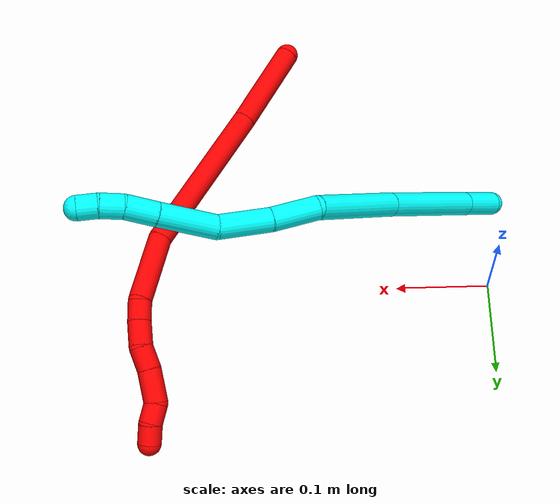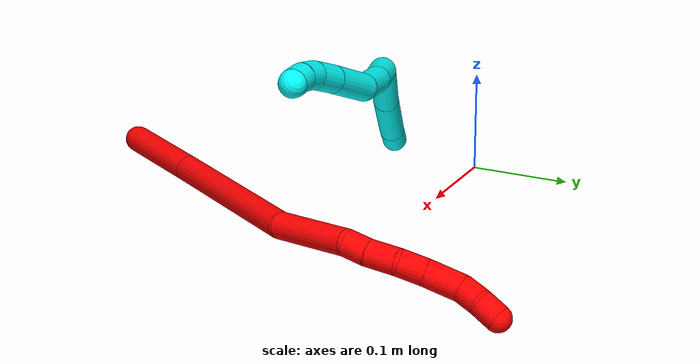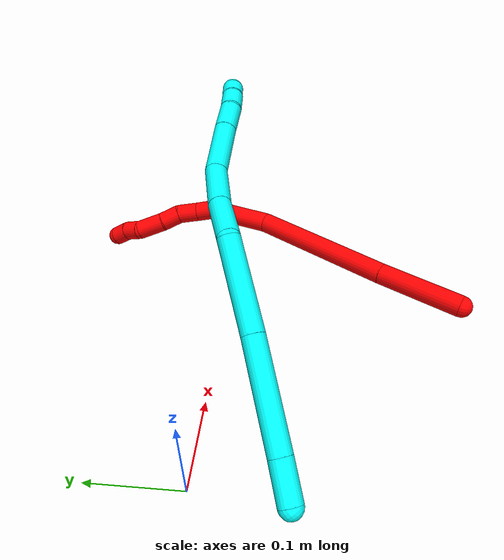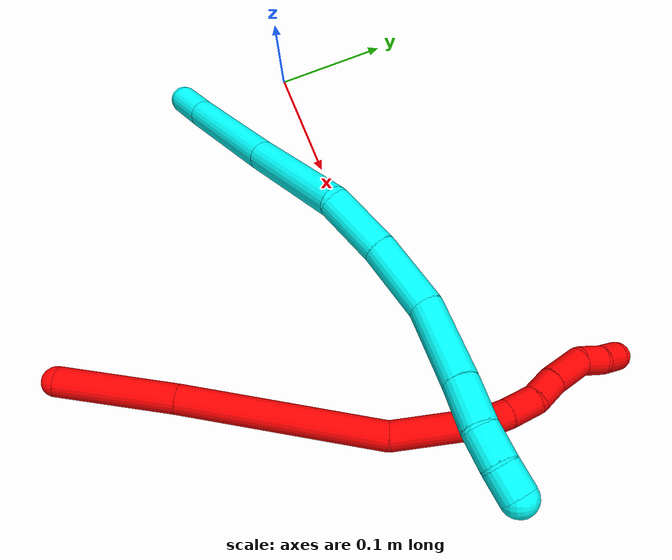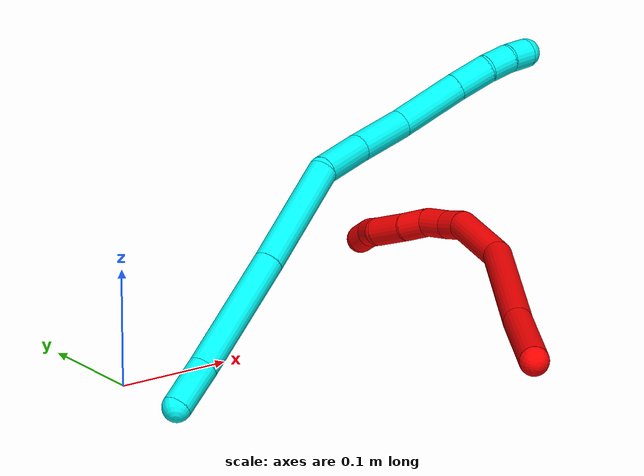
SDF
<sdf version="1.7">
 <world name="default">
  <model name="photoneo_s_sensor">
   <static>1</static>
   <pose>0 0 2 1.57079 1.57079 3.14159</pose>
   <link name="link">
    <inertial><mass>0.1</mass></inertial>
    <sensor name="sensor" type="depth">
     <update_rate>30</update_rate>
     <camera>
      <horizontal_fov>1.22</horizontal_fov>
      <image><width>1920</width><height>1200</height><format>B8G8R8</format></image>
      <clip><near>0.1</near><far>4</far></clip>
      <depth_camera><output>points</output></depth_camera>
     </camera>
     <plugin name="camera_plugin" filename="libgazebo_ros_depth_camera.so">
      <baseline>0.2</baseline>
      <alwaysOn>1</alwaysOn>
      <updateRate>0.0</updateRate>
      <cameraName>camera_ir</cameraName>
      <imageTopicName>/camera/color/image_raw</imageTopicName>
      <cameraInfoTopicName>/camera/color/camera_info</cameraInfoTopicName>
      <depthImageTopicName>/camera/depth/image_raw</depthImageTopicName>
      <depthImageCameraInfoTopicName>/camera/depth/camera_info</depthImageCameraInfoTopicName>
      <pointCloudTopicName>/camera/depth/points</pointCloudTopicName>
      <frameName>fr_optical</frameName>
      <pointCloudCutoff>0.1</pointCloudCutoff>
      <pointCloudCutoffMax>2.0</pointCloudCutoffMax>
      <distortionK1>0</distortionK1>
      <distortionK2>0</distortionK2>
      <distortionK3>0</distortionK3>
      <distortionT1>0</distortionT1>
      <distortionT2>0</distortionT2>
      <CxPrime>0</CxPrime>
      <Cx>0</Cx>
      <Cy>0</Cy>
      <focalLength>0</focalLength>
      <hackBaseline>0</hackBaseline>
     </plugin>
    </sensor>
   </link>
  </model>
  <model name="bin">
   <static>1</static>
   <link name="bottom">
    <collision name="collision-bottom">
     <pose>0 0 -0.01 0 -0 0</pose>
     <geometry><box><size>0.8 0.6 0.02</size></box></geometry>
     <surface>
      <friction><ode><mu>100</mu><mu2>100</mu2></ode></friction>
      <contact><collide_bitmask>65535</collide_bitmask></contact>
     </surface>
    </collision>
   </link>
   <link name="west_wall">
    <collision name="collision-west_wall">
     <pose>-0.41 0 0.1 0 -0 0</pose>
     <geometry><box><size>0.02 0.6 0.2</size></box></geometry>
     <surface>
      <friction><ode><mu>100</mu><mu2>100</mu2></ode></friction>
      <contact><collide_bitmask>65535</collide_bitmask></contact>
     </surface>
    </collision>
   </link>
   <link name="east_wall">
    <collision name="collision-east_wall">
     <pose>0.41 0 0.1 0 -0 0</pose>
     <geometry><box><size>0.02 0.6 0.2</size></box></geometry>
     <surface>
      <friction><ode><mu>100</mu><mu2>100</mu2></ode></friction>
      <contact><collide_bitmask>65535</collide_bitmask></contact>
     </surface>
    </collision>
   </link>
   <link name="south_wall">
    <collision name="collision-south_wall">
     <pose>0 -0.31 0.1 0 -0 0</pose>
     <geometry><box><size>0.8 0.02 0.2</size></box></geometry>
     <surface>
      <friction><ode><mu>100</mu><mu2>100</mu2></ode></friction>
      <contact><collide_bitmask>65535</collide_bitmask></contact>
     </surface>
    </collision>
   </link>
   <link name="north_wall">
    <collision name="collision-north_wall">
     <pose>0 0.31 0.1 0 -0 0</pose>
     <geometry><box><size>0.8 0.02 0.2</size></box></geometry>
     <surface>
      <friction><ode><mu>100</mu><mu2>100</mu2></ode></friction>
      <contact><collide_bitmask>65535</collide_bitmask></contact>
     </surface>
    </collision>
   </link>
  </model>
  <model name="2">
   <static>0</static>
   <link name="2">
    <collision name="collision-cylinder-e_1_1_4">
     <pose>0.010281 0.004033 0.048263 -0.083367 0.209177 -0.008756</pose>
     <geometry><cylinder><radius>0.0125</radius><length>0.09902</length></cylinder></geometry>
     <surface>
      <friction><ode><mu>1.16</mu><mu2>1.16</mu2><slip1>0</slip1><slip2>0</slip2></ode></friction>
      <contact><ode><kp>1e+06</kp><kd>1</kd><max_vel>0</max_vel><min_depth>0.001</min_depth></ode></contact>
     </surface>
    </collision>
    <visual name="visual-cylinder-e_1_1_4">
     <pose>0.010281 0.004033 0.048263 -0.083367 0.209177 -0.008756</pose>
     <geometry><cylinder><radius>0.0125</radius><length>0.09902</length></cylinder></geometry>
     <material><ambient>1 0 0 1</ambient></material>
    </visual>
    <collision name="collision-cylinder-e_2_4_5">
     <pose>0.041038 0.014027 0.180428 -0.070936 0.238789 -0.008513</pose>
     <geometry><cylinder><radius>0.0125</radius><length>0.173142</length></cylinder></geometry>
     <surface>
      <friction><ode><mu>1.16</mu><mu2>1.16</mu2><slip1>0</slip1><slip2>0</slip2></ode></friction>
      <contact><ode><kp>1e+06</kp><kd>1</kd><max_vel>0</max_vel><min_depth>0.001</min_depth></ode></contact>
     </surface>
    </collision>
    <visual name="visual-cylinder-e_2_4_5">
     <pose>0.041038 0.014027 0.180428 -0.070936 0.238789 -0.008513</pose>
     <geometry><cylinder><radius>0.0125</radius><length>0.173142</length></cylinder></geometry>
     <material><ambient>1 0 0 1</ambient></material>
    </visual>
    <collision name="collision-cylinder-e_3_5_6">
     <pose>0.059124 0.02028 0.302591 -0.007588 -0.062396 0.000237</pose>
     <geometry><cylinder><radius>0.0125</radius><length>0.076672</length></cylinder></geometry>
     <surface>
      <friction><ode><mu>1.16</mu><mu2>1.16</mu2><slip1>0</slip1><slip2>0</slip2></ode></friction>
      <contact><ode><kp>1e+06</kp><kd>1</kd><max_vel>0</max_vel><min_depth>0.001</min_depth></ode></contact>
     </surface>
    </collision>
    <visual name="visual-cylinder-e_3_5_6">
     <pose>0.059124 0.02028 0.302591 -0.007588 -0.062396 0.000237</pose>
     <geometry><cylinder><radius>0.0125</radius><length>0.076672</length></cylinder></geometry>
     <material><ambient>1 0 0 1</ambient></material>
    </visual>
    <collision name="collision-cylinder-e_4_6_7">
     <pose>0.053554 0.023697 0.350935 -0.300665 -0.292556 0.044627</pose>
     <geometry><cylinder><radius>0.0125</radius><length>0.022052</length></cylinder></geometry>
     <surface>
      <friction><ode><mu>1.16</mu><mu2>1.16</mu2><slip1>0</slip1><slip2>0</slip2></ode></friction>
      <contact><ode><kp>1e+06</kp><kd>1</kd><max_vel>0</max_vel><min_depth>0.001</min_depth></ode></contact>
     </surface>
    </collision>
    <visual name="visual-cylinder-e_4_6_7">
     <pose>0.053554 0.023697 0.350935 -0.300665 -0.292556 0.044627</pose>
     <geometry><cylinder><radius>0.0125</radius><length>0.022052</length></cylinder></geometry>
     <material><ambient>1 0 0 1</ambient></material>
    </visual>
    <collision name="collision-cylinder-e_5_7_8">
     <pose>0.045201 0.029417 0.373283 -0.208421 -0.391392 0.04146</pose>
     <geometry><cylinder><radius>0.0125</radius><length>0.027122</length></cylinder></geometry>
     <surface>
      <friction><ode><mu>1.16</mu><mu2>1.16</mu2><slip1>0</slip1><slip2>0</slip2></ode></friction>
      <contact><ode><kp>1e+06</kp><kd>1</kd><max_vel>0</max_vel><min_depth>0.001</min_depth></ode></contact>
     </surface>
    </collision>
    <visual name="visual-cylinder-e_5_7_8">
     <pose>0.045201 0.029417 0.373283 -0.208421 -0.391392 0.04146</pose>
     <geometry><cylinder><radius>0.0125</radius><length>0.027122</length></cylinder></geometry>
     <material><ambient>1 0 0 1</ambient></material>
    </visual>
    <collision name="collision-cylinder-e_6_8_9">
     <pose>0.032498 0.036431 0.394397 -0.463231 -0.650647 0.158772</pose>
     <geometry><cylinder><radius>0.0125</radius><length>0.024863</length></cylinder></geometry>
     <surface>
      <friction><ode><mu>1.16</mu><mu2>1.16</mu2><slip1>0</slip1><slip2>0</slip2></ode></friction>
      <contact><ode><kp>1e+06</kp><kd>1</kd><max_vel>0</max_vel><min_depth>0.001</min_depth></ode></contact>
     </surface>
    </collision>
    <visual name="visual-cylinder-e_6_8_9">
     <pose>0.032498 0.036431 0.394397 -0.463231 -0.650647 0.158772</pose>
     <geometry><cylinder><radius>0.0125</radius><length>0.024863</length></cylinder></geometry>
     <material><ambient>1 0 0 1</ambient></material>
    </visual>
    <collision name="collision-cylinder-e_7_9_10">
     <pose>0.016534 0.04709 0.417363 -0.416131 -0.500109 0.107736</pose>
     <geometry><cylinder><radius>0.0125</radius><length>0.035176</length></cylinder></geometry>
     <surface>
      <friction><ode><mu>1.16</mu><mu2>1.16</mu2><slip1>0</slip1><slip2>0</slip2></ode></friction>
      <contact><ode><kp>1e+06</kp><kd>1</kd><max_vel>0</max_vel><min_depth>0.001</min_depth></ode></contact>
     </surface>
    </collision>
    <visual name="visual-cylinder-e_7_9_10">
     <pose>0.016534 0.04709 0.417363 -0.416131 -0.500109 0.107736</pose>
     <geometry><cylinder><radius>0.0125</radius><length>0.035176</length></cylinder></geometry>
     <material><ambient>1 0 0 1</ambient></material>
    </visual>
    <collision name="collision-cylinder-e_8_10_11">
     <pose>0.007708 0.057357 0.441392 -0.386049 -0.036643 0.007163</pose>
     <geometry><cylinder><radius>0.0125</radius><length>0.021414</length></cylinder></geometry>
     <surface>
      <friction><ode><mu>1.16</mu><mu2>1.16</mu2><slip1>0</slip1><slip2>0</slip2></ode></friction>
      <contact><ode><kp>1e+06</kp><kd>1</kd><max_vel>0</max_vel><min_depth>0.001</min_depth></ode></contact>
     </surface>
    </collision>
    <visual name="visual-cylinder-e_8_10_11">
     <pose>0.007708 0.057357 0.441392 -0.386049 -0.036643 0.007163</pose>
     <geometry><cylinder><radius>0.0125</radius><length>0.021414</length></cylinder></geometry>
     <material><ambient>1 0 0 1</ambient></material>
    </visual>
    <collision name="collision-cylinder-e_9_11_2">
     <pose>0.005171 0.067224 0.459476 -0.620327 -0.210427 0.067668</pose>
     <geometry><cylinder><radius>0.0125</radius><length>0.020539</length></cylinder></geometry>
     <surface>
      <friction><ode><mu>1.16</mu><mu2>1.16</mu2><slip1>0</slip1><slip2>0</slip2></ode></friction>
      <contact><ode><kp>1e+06</kp><kd>1</kd><max_vel>0</max_vel><min_depth>0.001</min_depth></ode></contact>
     </surface>
    </collision>
    <visual name="visual-cylinder-e_9_11_2">
     <pose>0.005171 0.067224 0.459476 -0.620327 -0.210427 0.067668</pose>
     <geometry><cylinder><radius>0.0125</radius><length>0.020539</length></cylinder></geometry>
     <material><ambient>1 0 0 1</ambient></material>
    </visual>
    <collision name="collision-sphere-2">
     <pose>0.003026 0.073062 0.467648 0 -0 0</pose>
     <geometry><sphere><radius>0.0125</radius></sphere></geometry>
     <surface>
      <friction><ode><mu>1.16</mu><mu2>1.16</mu2><slip1>0</slip1><slip2>0</slip2></ode></friction>
      <contact><ode><kp>1e+06</kp><kd>1</kd><max_vel>0</max_vel><min_depth>0.001</min_depth></ode></contact>
     </surface>
    </collision>
    <visual name="visual-sphere-2">
     <pose>0.003026 0.073062 0.467648 0 -0 0</pose>
     <geometry><sphere><radius>0.0125</radius></sphere></geometry>
     <material><ambient>1 0 0 1</ambient></material>
    </visual>
    <collision name="collision-sphere-11">
     <pose>0.007316 0.061386 0.451304 0 -0 0</pose>
     <geometry><sphere><radius>0.0125</radius></sphere></geometry>
     <surface>
      <friction><ode><mu>1.16</mu><mu2>1.16</mu2><slip1>0</slip1><slip2>0</slip2></ode></friction>
      <contact><ode><kp>1e+06</kp><kd>1</kd><max_vel>0</max_vel><min_depth>0.001</min_depth></ode></contact>
     </surface>
    </collision>
    <visual name="visual-sphere-11">
     <pose>0.007316 0.061386 0.451304 0 -0 0</pose>
     <geometry><sphere><radius>0.0125</radius></sphere></geometry>
     <material><ambient>1 0 0 1</ambient></material>
    </visual>
    <collision name="collision-sphere-10">
     <pose>0.0081 0.053328 0.431479 0 -0 0</pose>
     <geometry><sphere><radius>0.0125</radius></sphere></geometry>
     <surface>
      <friction><ode><mu>1.16</mu><mu2>1.16</mu2><slip1>0</slip1><slip2>0</slip2></ode></friction>
      <contact><ode><kp>1e+06</kp><kd>1</kd><max_vel>0</max_vel><min_depth>0.001</min_depth></ode></contact>
     </surface>
    </collision>
    <visual name="visual-sphere-10">
     <pose>0.0081 0.053328 0.431479 0 -0 0</pose>
     <geometry><sphere><radius>0.0125</radius></sphere></geometry>
     <material><ambient>1 0 0 1</ambient></material>
    </visual>
    <collision name="collision-sphere-9">
     <pose>0.024968 0.040851 0.403246 0 -0 0</pose>
     <geometry><sphere><radius>0.0125</radius></sphere></geometry>
     <surface>
      <friction><ode><mu>1.16</mu><mu2>1.16</mu2><slip1>0</slip1><slip2>0</slip2></ode></friction>
      <contact><ode><kp>1e+06</kp><kd>1</kd><max_vel>0</max_vel><min_depth>0.001</min_depth></ode></contact>
     </surface>
    </collision>
    <visual name="visual-sphere-9">
     <pose>0.024968 0.040851 0.403246 0 -0 0</pose>
     <geometry><sphere><radius>0.0125</radius></sphere></geometry>
     <material><ambient>1 0 0 1</ambient></material>
    </visual>
    <collision name="collision-sphere-4">
     <pose>0.020562 0.008066 0.096525 0 -0 0</pose>
     <geometry><sphere><radius>0.0125</radius></sphere></geometry>
     <surface>
      <friction><ode><mu>1.16</mu><mu2>1.16</mu2><slip1>0</slip1><slip2>0</slip2></ode></friction>
      <contact><ode><kp>1e+06</kp><kd>1</kd><max_vel>0</max_vel><min_depth>0.001</min_depth></ode></contact>
     </surface>
    </collision>
    <visual name="visual-sphere-4">
     <pose>0.020562 0.008066 0.096525 0 -0 0</pose>
     <geometry><sphere><radius>0.0125</radius></sphere></geometry>
     <material><ambient>1 0 0 1</ambient></material>
    </visual>
    <collision name="collision-sphere-1">
     <geometry><sphere><radius>0.0125</radius></sphere></geometry>
     <surface>
      <friction><ode><mu>1.16</mu><mu2>1.16</mu2><slip1>0</slip1><slip2>0</slip2></ode></friction>
      <contact><ode><kp>1e+06</kp><kd>1</kd><max_vel>0</max_vel><min_depth>0.001</min_depth></ode></contact>
     </surface>
    </collision>
    <visual name="visual-sphere-1">
     <geometry><sphere><radius>0.0125</radius></sphere></geometry>
     <material><ambient>1 0 0 1</ambient></material>
    </visual>
    <collision name="collision-sphere-8">
     <pose>0.040027 0.032011 0.385547 0 -0 0</pose>
     <geometry><sphere><radius>0.0125</radius></sphere></geometry>
     <surface>
      <friction><ode><mu>1.16</mu><mu2>1.16</mu2><slip1>0</slip1><slip2>0</slip2></ode></friction>
      <contact><ode><kp>1e+06</kp><kd>1</kd><max_vel>0</max_vel><min_depth>0.001</min_depth></ode></contact>
     </surface>
    </collision>
    <visual name="visual-sphere-8">
     <pose>0.040027 0.032011 0.385547 0 -0 0</pose>
     <geometry><sphere><radius>0.0125</radius></sphere></geometry>
     <material><ambient>1 0 0 1</ambient></material>
    </visual>
    <collision name="collision-sphere-5">
     <pose>0.061515 0.019989 0.264331 0 -0 0</pose>
     <geometry><sphere><radius>0.0125</radius></sphere></geometry>
     <surface>
      <friction><ode><mu>1.16</mu><mu2>1.16</mu2><slip1>0</slip1><slip2>0</slip2></ode></friction>
      <contact><ode><kp>1e+06</kp><kd>1</kd><max_vel>0</max_vel><min_depth>0.001</min_depth></ode></contact>
     </surface>
    </collision>
    <visual name="visual-sphere-5">
     <pose>0.061515 0.019989 0.264331 0 -0 0</pose>
     <geometry><sphere><radius>0.0125</radius></sphere></geometry>
     <material><ambient>1 0 0 1</ambient></material>
    </visual>
    <collision name="collision-sphere-6">
     <pose>0.056734 0.02057 0.340851 0 -0 0</pose>
     <geometry><sphere><radius>0.0125</radius></sphere></geometry>
     <surface>
      <friction><ode><mu>1.16</mu><mu2>1.16</mu2><slip1>0</slip1><slip2>0</slip2></ode></friction>
      <contact><ode><kp>1e+06</kp><kd>1</kd><max_vel>0</max_vel><min_depth>0.001</min_depth></ode></contact>
     </surface>
    </collision>
    <visual name="visual-sphere-6">
     <pose>0.056734 0.02057 0.340851 0 -0 0</pose>
     <geometry><sphere><radius>0.0125</radius></sphere></geometry>
     <material><ambient>1 0 0 1</ambient></material>
    </visual>
    <collision name="collision-sphere-7">
     <pose>0.050374 0.026823 0.361019 0 -0 0</pose>
     <geometry><sphere><radius>0.0125</radius></sphere></geometry>
     <surface>
      <friction><ode><mu>1.16</mu><mu2>1.16</mu2><slip1>0</slip1><slip2>0</slip2></ode></friction>
      <contact><ode><kp>1e+06</kp><kd>1</kd><max_vel>0</max_vel><min_depth>0.001</min_depth></ode></contact>
     </surface>
    </collision>
    <visual name="visual-sphere-7">
     <pose>0.050374 0.026823 0.361019 0 -0 0</pose>
     <geometry><sphere><radius>0.0125</radius></sphere></geometry>
     <material><ambient>1 0 0 1</ambient></material>
    </visual>
    <inertial>
     <pose>0.033449 0.021749 0.240916 0 -0 0</pose>
     <mass>0.5</mass>
     <inertia>
      <ixx>0.000561</ixx>
      <ixy>0</ixy>
      <ixz>0</ixz>
      <iyy>0.00058</iyy>
      <iyz>0</iyz>
      <izz>-0.000119</izz>
     </inertia>
    </inertial>
   </link>
   <pose>0.212478 -0.273079 0.056407 -1.50971 -0.054313 -0.316339</pose>
  </model>
  <model name="3">
   <static>0</static>
   <link name="3">
    <collision name="collision-cylinder-e_1_1_4">
     <pose>0.003155 0.008814 0.018996 -0.434441 0.149547 -0.033064</pose>
     <geometry><cylinder><radius>0.0125</radius><length>0.042356</length></cylinder></geometry>
     <surface>
      <friction><ode><mu>1.16</mu><mu2>1.16</mu2><slip1>0</slip1><slip2>0</slip2></ode></friction>
      <contact><ode><kp>1e+06</kp><kd>1</kd><max_vel>0</max_vel><min_depth>0.001</min_depth></ode></contact>
     </surface>
    </collision>
    <visual name="visual-cylinder-e_1_1_4">
     <pose>0.003155 0.008814 0.018996 -0.434441 0.149547 -0.033064</pose>
     <geometry><cylinder><radius>0.0125</radius><length>0.042356</length></cylinder></geometry>
     <material><ambient>0.003922 1 0.996078 1</ambient></material>
    </visual>
    <collision name="collision-cylinder-e_2_4_5">
     <pose>0.0152 0.039915 0.08919 -0.410565 0.157866 -0.032936</pose>
     <geometry><cylinder><radius>0.0125</radius><length>0.113083</length></cylinder></geometry>
     <surface>
      <friction><ode><mu>1.16</mu><mu2>1.16</mu2><slip1>0</slip1><slip2>0</slip2></ode></friction>
      <contact><ode><kp>1e+06</kp><kd>1</kd><max_vel>0</max_vel><min_depth>0.001</min_depth></ode></contact>
     </surface>
    </collision>
    <visual name="visual-cylinder-e_2_4_5">
     <pose>0.0152 0.039915 0.08919 -0.410565 0.157866 -0.032936</pose>
     <geometry><cylinder><radius>0.0125</radius><length>0.113083</length></cylinder></geometry>
     <material><ambient>0.003922 1 0.996078 1</ambient></material>
    </visual>
    <collision name="collision-cylinder-e_3_5_6">
     <pose>0.031323 0.08126 0.186778 -0.389795 0.143257 -0.028326</pose>
     <geometry><cylinder><radius>0.0125</radius><length>0.101342</length></cylinder></geometry>
     <surface>
      <friction><ode><mu>1.16</mu><mu2>1.16</mu2><slip1>0</slip1><slip2>0</slip2></ode></friction>
      <contact><ode><kp>1e+06</kp><kd>1</kd><max_vel>0</max_vel><min_depth>0.001</min_depth></ode></contact>
     </surface>
    </collision>
    <visual name="visual-cylinder-e_3_5_6">
     <pose>0.031323 0.08126 0.186778 -0.389795 0.143257 -0.028326</pose>
     <geometry><cylinder><radius>0.0125</radius><length>0.101342</length></cylinder></geometry>
     <material><ambient>0.003922 1 0.996078 1</ambient></material>
    </visual>
    <collision name="collision-cylinder-e_4_6_7">
     <pose>0.032641 0.114658 0.252519 -0.637774 -0.240863 0.079866</pose>
     <geometry><cylinder><radius>0.0125</radius><length>0.049603</length></cylinder></geometry>
     <surface>
      <friction><ode><mu>1.16</mu><mu2>1.16</mu2><slip1>0</slip1><slip2>0</slip2></ode></friction>
      <contact><ode><kp>1e+06</kp><kd>1</kd><max_vel>0</max_vel><min_depth>0.001</min_depth></ode></contact>
     </surface>
    </collision>
    <visual name="visual-cylinder-e_4_6_7">
     <pose>0.032641 0.114658 0.252519 -0.637774 -0.240863 0.079866</pose>
     <geometry><cylinder><radius>0.0125</radius><length>0.049603</length></cylinder></geometry>
     <material><ambient>0.003922 1 0.996078 1</ambient></material>
    </visual>
    <collision name="collision-cylinder-e_5_7_8">
     <pose>0.022323 0.146754 0.292281 -0.715914 -0.161298 0.06045</pose>
     <geometry><cylinder><radius>0.0125</radius><length>0.054817</length></cylinder></geometry>
     <surface>
      <friction><ode><mu>1.16</mu><mu2>1.16</mu2><slip1>0</slip1><slip2>0</slip2></ode></friction>
      <contact><ode><kp>1e+06</kp><kd>1</kd><max_vel>0</max_vel><min_depth>0.001</min_depth></ode></contact>
     </surface>
    </collision>
    <visual name="visual-cylinder-e_5_7_8">
     <pose>0.022323 0.146754 0.292281 -0.715914 -0.161298 0.06045</pose>
     <geometry><cylinder><radius>0.0125</radius><length>0.054817</length></cylinder></geometry>
     <material><ambient>0.003922 1 0.996078 1</ambient></material>
    </visual>
    <collision name="collision-cylinder-e_6_8_9">
     <pose>0.022928 0.186845 0.332902 -0.835312 0.16471 -0.073225</pose>
     <geometry><cylinder><radius>0.0125</radius><length>0.061071</length></cylinder></geometry>
     <surface>
      <friction><ode><mu>1.16</mu><mu2>1.16</mu2><slip1>0</slip1><slip2>0</slip2></ode></friction>
      <contact><ode><kp>1e+06</kp><kd>1</kd><max_vel>0</max_vel><min_depth>0.001</min_depth></ode></contact>
     </surface>
    </collision>
    <visual name="visual-cylinder-e_6_8_9">
     <pose>0.022928 0.186845 0.332902 -0.835312 0.16471 -0.073225</pose>
     <geometry><cylinder><radius>0.0125</radius><length>0.061071</length></cylinder></geometry>
     <material><ambient>0.003922 1 0.996078 1</ambient></material>
    </visual>
    <collision name="collision-cylinder-e_7_9_10">
     <pose>0.030559 0.221661 0.363481 -0.877568 0.160388 -0.075396</pose>
     <geometry><cylinder><radius>0.0125</radius><length>0.032872</length></cylinder></geometry>
     <surface>
      <friction><ode><mu>1.16</mu><mu2>1.16</mu2><slip1>0</slip1><slip2>0</slip2></ode></friction>
      <contact><ode><kp>1e+06</kp><kd>1</kd><max_vel>0</max_vel><min_depth>0.001</min_depth></ode></contact>
     </surface>
    </collision>
    <visual name="visual-cylinder-e_7_9_10">
     <pose>0.030559 0.221661 0.363481 -0.877568 0.160388 -0.075396</pose>
     <geometry><cylinder><radius>0.0125</radius><length>0.032872</length></cylinder></geometry>
     <material><ambient>0.003922 1 0.996078 1</ambient></material>
    </visual>
    <collision name="collision-cylinder-e_8_10_11">
     <pose>0.032613 0.243154 0.381754 -0.850821 -0.047635 0.021585</pose>
     <geometry><cylinder><radius>0.0125</radius><length>0.024005</length></cylinder></geometry>
     <surface>
      <friction><ode><mu>1.16</mu><mu2>1.16</mu2><slip1>0</slip1><slip2>0</slip2></ode></friction>
      <contact><ode><kp>1e+06</kp><kd>1</kd><max_vel>0</max_vel><min_depth>0.001</min_depth></ode></contact>
     </surface>
    </collision>
    <visual name="visual-cylinder-e_8_10_11">
     <pose>0.032613 0.243154 0.381754 -0.850821 -0.047635 0.021585</pose>
     <geometry><cylinder><radius>0.0125</radius><length>0.024005</length></cylinder></geometry>
     <material><ambient>0.003922 1 0.996078 1</ambient></material>
    </visual>
    <collision name="collision-cylinder-e_9_11_2">
     <pose>0.02972 0.259938 0.396211 -0.870312 -0.224516 0.104717</pose>
     <geometry><cylinder><radius>0.0125</radius><length>0.020851</length></cylinder></geometry>
     <surface>
      <friction><ode><mu>1.16</mu><mu2>1.16</mu2><slip1>0</slip1><slip2>0</slip2></ode></friction>
      <contact><ode><kp>1e+06</kp><kd>1</kd><max_vel>0</max_vel><min_depth>0.001</min_depth></ode></contact>
     </surface>
    </collision>
    <visual name="visual-cylinder-e_9_11_2">
     <pose>0.02972 0.259938 0.396211 -0.870312 -0.224516 0.104717</pose>
     <geometry><cylinder><radius>0.0125</radius><length>0.020851</length></cylinder></geometry>
     <material><ambient>0.003922 1 0.996078 1</ambient></material>
    </visual>
    <collision name="collision-sphere-2">
     <pose>0.027399 0.267709 0.402762 0 -0 0</pose>
     <geometry><sphere><radius>0.0125</radius></sphere></geometry>
     <surface>
      <friction><ode><mu>1.16</mu><mu2>1.16</mu2><slip1>0</slip1><slip2>0</slip2></ode></friction>
      <contact><ode><kp>1e+06</kp><kd>1</kd><max_vel>0</max_vel><min_depth>0.001</min_depth></ode></contact>
     </surface>
    </collision>
    <visual name="visual-sphere-2">
     <pose>0.027399 0.267709 0.402762 0 -0 0</pose>
     <geometry><sphere><radius>0.0125</radius></sphere></geometry>
     <material><ambient>0.003922 1 0.996078 1</ambient></material>
    </visual>
    <collision name="collision-sphere-11">
     <pose>0.032041 0.252168 0.389659 0 -0 0</pose>
     <geometry><sphere><radius>0.0125</radius></sphere></geometry>
     <surface>
      <friction><ode><mu>1.16</mu><mu2>1.16</mu2><slip1>0</slip1><slip2>0</slip2></ode></friction>
      <contact><ode><kp>1e+06</kp><kd>1</kd><max_vel>0</max_vel><min_depth>0.001</min_depth></ode></contact>
     </surface>
    </collision>
    <visual name="visual-sphere-11">
     <pose>0.032041 0.252168 0.389659 0 -0 0</pose>
     <geometry><sphere><radius>0.0125</radius></sphere></geometry>
     <material><ambient>0.003922 1 0.996078 1</ambient></material>
    </visual>
    <collision name="collision-sphere-10">
     <pose>0.033184 0.234141 0.373849 0 -0 0</pose>
     <geometry><sphere><radius>0.0125</radius></sphere></geometry>
     <surface>
      <friction><ode><mu>1.16</mu><mu2>1.16</mu2><slip1>0</slip1><slip2>0</slip2></ode></friction>
      <contact><ode><kp>1e+06</kp><kd>1</kd><max_vel>0</max_vel><min_depth>0.001</min_depth></ode></contact>
     </surface>
    </collision>
    <visual name="visual-sphere-10">
     <pose>0.033184 0.234141 0.373849 0 -0 0</pose>
     <geometry><sphere><radius>0.0125</radius></sphere></geometry>
     <material><ambient>0.003922 1 0.996078 1</ambient></material>
    </visual>
    <collision name="collision-sphere-9">
     <pose>0.027934 0.20918 0.353113 0 -0 0</pose>
     <geometry><sphere><radius>0.0125</radius></sphere></geometry>
     <surface>
      <friction><ode><mu>1.16</mu><mu2>1.16</mu2><slip1>0</slip1><slip2>0</slip2></ode></friction>
      <contact><ode><kp>1e+06</kp><kd>1</kd><max_vel>0</max_vel><min_depth>0.001</min_depth></ode></contact>
     </surface>
    </collision>
    <visual name="visual-sphere-9">
     <pose>0.027934 0.20918 0.353113 0 -0 0</pose>
     <geometry><sphere><radius>0.0125</radius></sphere></geometry>
     <material><ambient>0.003922 1 0.996078 1</ambient></material>
    </visual>
    <collision name="collision-sphere-4">
     <pose>0.006311 0.017629 0.037992 0 -0 0</pose>
     <geometry><sphere><radius>0.0125</radius></sphere></geometry>
     <surface>
      <friction><ode><mu>1.16</mu><mu2>1.16</mu2><slip1>0</slip1><slip2>0</slip2></ode></friction>
      <contact><ode><kp>1e+06</kp><kd>1</kd><max_vel>0</max_vel><min_depth>0.001</min_depth></ode></contact>
     </surface>
    </collision>
    <visual name="visual-sphere-4">
     <pose>0.006311 0.017629 0.037992 0 -0 0</pose>
     <geometry><sphere><radius>0.0125</radius></sphere></geometry>
     <material><ambient>0.003922 1 0.996078 1</ambient></material>
    </visual>
    <collision name="collision-sphere-1">
     <geometry><sphere><radius>0.0125</radius></sphere></geometry>
     <surface>
      <friction><ode><mu>1.16</mu><mu2>1.16</mu2><slip1>0</slip1><slip2>0</slip2></ode></friction>
      <contact><ode><kp>1e+06</kp><kd>1</kd><max_vel>0</max_vel><min_depth>0.001</min_depth></ode></contact>
     </surface>
    </collision>
    <visual name="visual-sphere-1">
     <geometry><sphere><radius>0.0125</radius></sphere></geometry>
     <material><ambient>0.003922 1 0.996078 1</ambient></material>
    </visual>
    <collision name="collision-sphere-8">
     <pose>0.017921 0.164509 0.312692 0 -0 0</pose>
     <geometry><sphere><radius>0.0125</radius></sphere></geometry>
     <surface>
      <friction><ode><mu>1.16</mu><mu2>1.16</mu2><slip1>0</slip1><slip2>0</slip2></ode></friction>
      <contact><ode><kp>1e+06</kp><kd>1</kd><max_vel>0</max_vel><min_depth>0.001</min_depth></ode></contact>
     </surface>
    </collision>
    <visual name="visual-sphere-8">
     <pose>0.017921 0.164509 0.312692 0 -0 0</pose>
     <geometry><sphere><radius>0.0125</radius></sphere></geometry>
     <material><ambient>0.003922 1 0.996078 1</ambient></material>
    </visual>
    <collision name="collision-sphere-5">
     <pose>0.024089 0.062202 0.140388 0 -0 0</pose>
     <geometry><sphere><radius>0.0125</radius></sphere></geometry>
     <surface>
      <friction><ode><mu>1.16</mu><mu2>1.16</mu2><slip1>0</slip1><slip2>0</slip2></ode></friction>
      <contact><ode><kp>1e+06</kp><kd>1</kd><max_vel>0</max_vel><min_depth>0.001</min_depth></ode></contact>
     </surface>
    </collision>
    <visual name="visual-sphere-5">
     <pose>0.024089 0.062202 0.140388 0 -0 0</pose>
     <geometry><sphere><radius>0.0125</radius></sphere></geometry>
     <material><ambient>0.003922 1 0.996078 1</ambient></material>
    </visual>
    <collision name="collision-sphere-6">
     <pose>0.038557 0.100317 0.233168 0 -0 0</pose>
     <geometry><sphere><radius>0.0125</radius></sphere></geometry>
     <surface>
      <friction><ode><mu>1.16</mu><mu2>1.16</mu2><slip1>0</slip1><slip2>0</slip2></ode></friction>
      <contact><ode><kp>1e+06</kp><kd>1</kd><max_vel>0</max_vel><min_depth>0.001</min_depth></ode></contact>
     </surface>
    </collision>
    <visual name="visual-sphere-6">
     <pose>0.038557 0.100317 0.233168 0 -0 0</pose>
     <geometry><sphere><radius>0.0125</radius></sphere></geometry>
     <material><ambient>0.003922 1 0.996078 1</ambient></material>
    </visual>
    <collision name="collision-sphere-7">
     <pose>0.026724 0.128999 0.27187 0 -0 0</pose>
     <geometry><sphere><radius>0.0125</radius></sphere></geometry>
     <surface>
      <friction><ode><mu>1.16</mu><mu2>1.16</mu2><slip1>0</slip1><slip2>0</slip2></ode></friction>
      <contact><ode><kp>1e+06</kp><kd>1</kd><max_vel>0</max_vel><min_depth>0.001</min_depth></ode></contact>
     </surface>
    </collision>
    <visual name="visual-sphere-7">
     <pose>0.026724 0.128999 0.27187 0 -0 0</pose>
     <geometry><sphere><radius>0.0125</radius></sphere></geometry>
     <material><ambient>0.003922 1 0.996078 1</ambient></material>
    </visual>
    <inertial>
     <pose>0.023354 0.113617 0.216142 0 -0 0</pose>
     <mass>0.5</mass>
     <inertia>
      <ixx>0.000273</ixx>
      <ixy>0</ixy>
      <ixz>0</ixz>
      <iyy>0.000262</iyy>
      <iyz>0</iyz>
      <izz>-0.000126</izz>
     </inertia>
    </inertial>
   </link>
   <pose>-0.011522 -0.09668 0.012317 -0.262888 -0.97918 -1.93657</pose>
  </model>
 </world>
</sdf>
